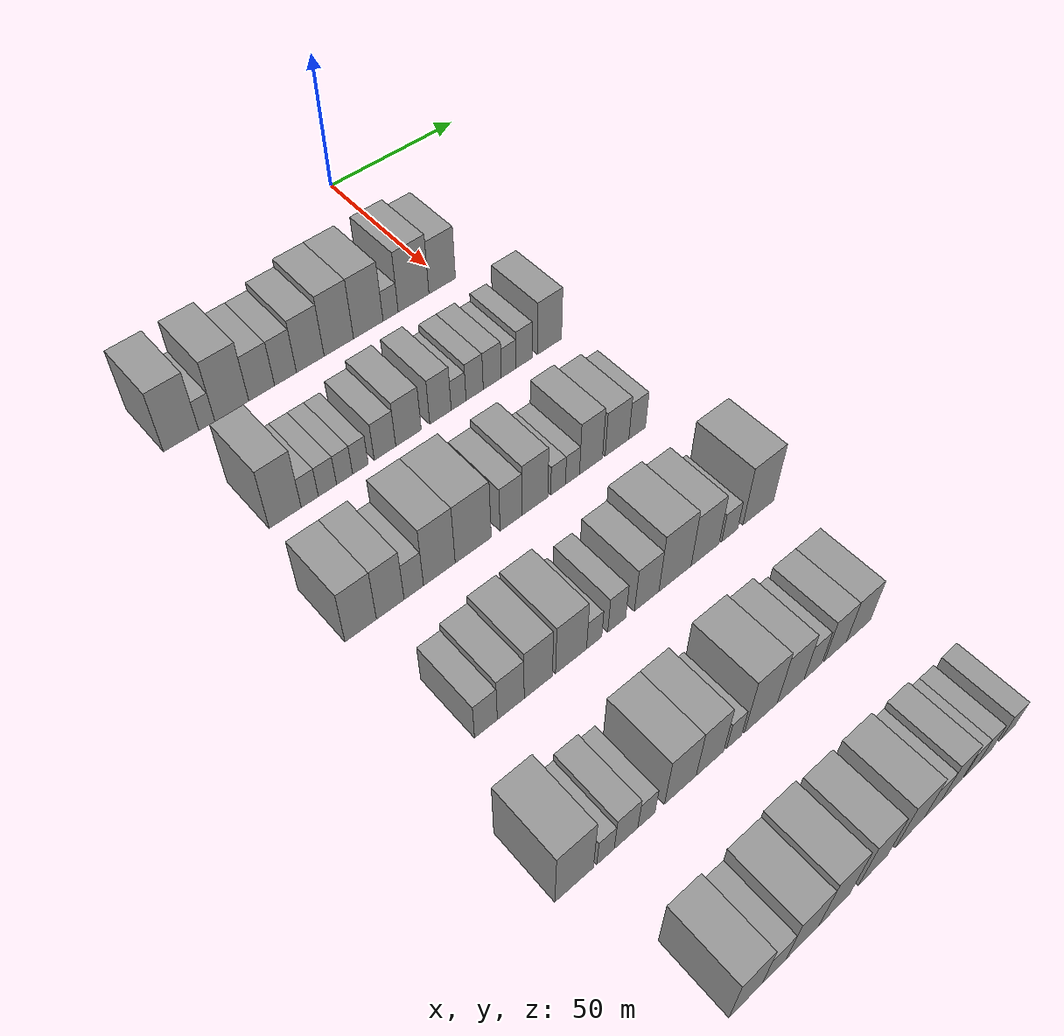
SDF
<sdf version="1.6">
 <world name="default">
  <model name="building_61">
   <static>1</static>
   <pose>50.0000 -93.2110 0 0.000000 0.000000 0.000000</pose>
   <link name="link">
    <pose>0 0 12.00 0 0 0</pose>
    <collision name="collision"><geometry><box><size>20.0000 11.2173 24.0000</size></box></geometry></collision>
    <visual name="visual">
     <cast_shadows>0</cast_shadows>
     <geometry><box><size>20.0000 11.2173 24.0000</size></box></geometry>
     <material>
      <script>
       <uri>model://grey_wall/materials/scripts</uri>
       <uri>model://grey_wall/materials/textures</uri>
       <name>vrc/grey_wall</name>
      </script>
     </material>
    </visual>
   </link>
  </model>
  <model name="building_62">
   <static>1</static>
   <pose>50.0000 -85.0519 0 0.000000 0.000000 0.000000</pose>
   <link name="link">
    <pose>0 0 6.00 0 0 0</pose>
    <collision name="collision"><geometry><box><size>20.0000 5.1009 12.0000</size></box></geometry></collision>
    <visual name="visual">
     <cast_shadows>0</cast_shadows>
     <geometry><box><size>20.0000 5.1009 12.0000</size></box></geometry>
     <material>
      <script>
       <uri>model://grey_wall/materials/scripts</uri>
       <uri>model://grey_wall/materials/textures</uri>
       <name>vrc/grey_wall</name>
      </script>
     </material>
    </visual>
   </link>
  </model>
  <model name="building_63">
   <static>1</static>
   <pose>50.0000 -76.9320 0 0.000000 0.000000 0.000000</pose>
   <link name="link">
    <pose>0 0 12.00 0 0 0</pose>
    <collision name="collision"><geometry><box><size>20.0000 11.1389 24.0000</size></box></geometry></collision>
    <visual name="visual">
     <cast_shadows>0</cast_shadows>
     <geometry><box><size>20.0000 11.1389 24.0000</size></box></geometry>
     <material>
      <script>
       <uri>model://grey_wall/materials/scripts</uri>
       <uri>model://grey_wall/materials/textures</uri>
       <name>vrc/grey_wall</name>
      </script>
     </material>
    </visual>
   </link>
  </model>
  <model name="building_64">
   <static>1</static>
   <pose>50.0000 -67.0298 0 0.000000 0.000000 0.000000</pose>
   <link name="link">
    <pose>0 0 9.00 0 0 0</pose>
    <collision name="collision"><geometry><box><size>20.0000 8.6655 18.0000</size></box></geometry></collision>
    <visual name="visual">
     <cast_shadows>0</cast_shadows>
     <geometry><box><size>20.0000 8.6655 18.0000</size></box></geometry>
     <material>
      <script>
       <uri>model://grey_wall/materials/scripts</uri>
       <uri>model://grey_wall/materials/textures</uri>
       <name>vrc/grey_wall</name>
      </script>
     </material>
    </visual>
   </link>
  </model>
  <model name="building_65">
   <static>1</static>
   <pose>50.0000 -58.9646 0 0.000000 0.000000 0.000000</pose>
   <link name="link">
    <pose>0 0 9.00 0 0 0</pose>
    <collision name="collision"><geometry><box><size>20.0000 7.4649 18.0000</size></box></geometry></collision>
    <visual name="visual">
     <cast_shadows>0</cast_shadows>
     <geometry><box><size>20.0000 7.4649 18.0000</size></box></geometry>
     <material>
      <script>
       <uri>model://grey_wall/materials/scripts</uri>
       <uri>model://grey_wall/materials/textures</uri>
       <name>vrc/grey_wall</name>
      </script>
     </material>
    </visual>
   </link>
  </model>
  <model name="building_66">
   <static>1</static>
   <pose>50.0000 -50.4153 0 0.000000 0.000000 0.000000</pose>
   <link name="link">
    <pose>0 0 10.50 0 0 0</pose>
    <collision name="collision"><geometry><box><size>20.0000 9.6337 21.0000</size></box></geometry></collision>
    <visual name="visual">
     <cast_shadows>0</cast_shadows>
     <geometry><box><size>20.0000 9.6337 21.0000</size></box></geometry>
     <material>
      <script>
       <uri>model://grey_wall/materials/scripts</uri>
       <uri>model://grey_wall/materials/textures</uri>
       <name>vrc/grey_wall</name>
      </script>
     </material>
    </visual>
   </link>
  </model>
  <model name="building_67">
   <static>1</static>
   <pose>50.0000 -40.3622 0 0.000000 0.000000 0.000000</pose>
   <link name="link">
    <pose>0 0 12.00 0 0 0</pose>
    <collision name="collision"><geometry><box><size>20.0000 10.4725 24.0000</size></box></geometry></collision>
    <visual name="visual">
     <cast_shadows>0</cast_shadows>
     <geometry><box><size>20.0000 10.4725 24.0000</size></box></geometry>
     <material>
      <script>
       <uri>model://grey_wall/materials/scripts</uri>
       <uri>model://grey_wall/materials/textures</uri>
       <name>vrc/grey_wall</name>
      </script>
     </material>
    </visual>
   </link>
  </model>
  <model name="building_68">
   <static>1</static>
   <pose>50.0000 -29.7375 0 0.000000 0.000000 0.000000</pose>
   <link name="link">
    <pose>0 0 12.00 0 0 0</pose>
    <collision name="collision"><geometry><box><size>20.0000 10.7768 24.0000</size></box></geometry></collision>
    <visual name="visual">
     <cast_shadows>0</cast_shadows>
     <geometry><box><size>20.0000 10.7768 24.0000</size></box></geometry>
     <material>
      <script>
       <uri>model://grey_wall/materials/scripts</uri>
       <uri>model://grey_wall/materials/textures</uri>
       <name>vrc/grey_wall</name>
      </script>
     </material>
    </visual>
   </link>
  </model>
  <model name="building_69">
   <static>1</static>
   <pose>50.0000 -21.5376 0 0.000000 0.000000 0.000000</pose>
   <link name="link">
    <pose>0 0 6.00 0 0 0</pose>
    <collision name="collision"><geometry><box><size>20.0000 5.6230 12.0000</size></box></geometry></collision>
    <visual name="visual">
     <cast_shadows>0</cast_shadows>
     <geometry><box><size>20.0000 5.6230 12.0000</size></box></geometry>
     <material>
      <script>
       <uri>model://grey_wall/materials/scripts</uri>
       <uri>model://grey_wall/materials/textures</uri>
       <name>vrc/grey_wall</name>
      </script>
     </material>
    </visual>
   </link>
  </model>
  <model name="building_70">
   <static>1</static>
   <pose>50.0000 -12.9066 0 0.000000 0.000000 0.000000</pose>
   <link name="link">
    <pose>0 0 12.00 0 0 0</pose>
    <collision name="collision"><geometry><box><size>20.0000 11.6391 24.0000</size></box></geometry></collision>
    <visual name="visual">
     <cast_shadows>0</cast_shadows>
     <geometry><box><size>20.0000 11.6391 24.0000</size></box></geometry>
     <material>
      <script>
       <uri>model://grey_wall/materials/scripts</uri>
       <uri>model://grey_wall/materials/textures</uri>
       <name>vrc/grey_wall</name>
      </script>
     </material>
    </visual>
   </link>
  </model>
  <model name="building_71">
   <static>1</static>
   <pose>50.0000 -1.9592 0 0.000000 0.000000 0.000000</pose>
   <link name="link">
    <pose>0 0 10.50 0 0 0</pose>
    <collision name="collision"><geometry><box><size>20.0000 10.2557 21.0000</size></box></geometry></collision>
    <visual name="visual">
     <cast_shadows>0</cast_shadows>
     <geometry><box><size>20.0000 10.2557 21.0000</size></box></geometry>
     <material>
      <script>
       <uri>model://grey_wall/materials/scripts</uri>
       <uri>model://grey_wall/materials/textures</uri>
       <name>vrc/grey_wall</name>
      </script>
     </material>
    </visual>
   </link>
  </model>
  <model name="building_195">
   <static>1</static>
   <pose>90.0000 -86.3754 0 0.000000 0.000000 0.000000</pose>
   <link name="link">
    <pose>0 0 12.00 0 0 0</pose>
    <collision name="collision"><geometry><box><size>20.0000 10.0518 24.0000</size></box></geometry></collision>
    <visual name="visual">
     <cast_shadows>0</cast_shadows>
     <geometry><box><size>20.0000 10.0518 24.0000</size></box></geometry>
     <material>
      <script>
       <uri>model://grey_wall/materials/scripts</uri>
       <uri>model://grey_wall/materials/textures</uri>
       <name>vrc/grey_wall</name>
      </script>
     </material>
    </visual>
   </link>
  </model>
  <model name="building_196">
   <static>1</static>
   <pose>90.0000 -78.6132 0 0.000000 0.000000 0.000000</pose>
   <link name="link">
    <pose>0 0 6.00 0 0 0</pose>
    <collision name="collision"><geometry><box><size>20.0000 5.4726 12.0000</size></box></geometry></collision>
    <visual name="visual">
     <cast_shadows>0</cast_shadows>
     <geometry><box><size>20.0000 5.4726 12.0000</size></box></geometry>
     <material>
      <script>
       <uri>model://grey_wall/materials/scripts</uri>
       <uri>model://grey_wall/materials/textures</uri>
       <name>vrc/grey_wall</name>
      </script>
     </material>
    </visual>
   </link>
  </model>
  <model name="building_197">
   <static>1</static>
   <pose>90.0000 -72.9280 0 0.000000 0.000000 0.000000</pose>
   <link name="link">
    <pose>0 0 6.00 0 0 0</pose>
    <collision name="collision"><geometry><box><size>20.0000 5.8979 12.0000</size></box></geometry></collision>
    <visual name="visual">
     <cast_shadows>0</cast_shadows>
     <geometry><box><size>20.0000 5.8979 12.0000</size></box></geometry>
     <material>
      <script>
       <uri>model://grey_wall/materials/scripts</uri>
       <uri>model://grey_wall/materials/textures</uri>
       <name>vrc/grey_wall</name>
      </script>
     </material>
    </visual>
   </link>
  </model>
  <model name="building_198">
   <static>1</static>
   <pose>90.0000 -67.3420 0 0.000000 0.000000 0.000000</pose>
   <link name="link">
    <pose>0 0 6.00 0 0 0</pose>
    <collision name="collision"><geometry><box><size>20.0000 5.2740 12.0000</size></box></geometry></collision>
    <visual name="visual">
     <cast_shadows>0</cast_shadows>
     <geometry><box><size>20.0000 5.2740 12.0000</size></box></geometry>
     <material>
      <script>
       <uri>model://grey_wall/materials/scripts</uri>
       <uri>model://grey_wall/materials/textures</uri>
       <name>vrc/grey_wall</name>
      </script>
     </material>
    </visual>
   </link>
  </model>
  <model name="building_199">
   <static>1</static>
   <pose>90.0000 -62.1107 0 0.000000 0.000000 0.000000</pose>
   <link name="link">
    <pose>0 0 6.00 0 0 0</pose>
    <collision name="collision"><geometry><box><size>20.0000 5.1886 12.0000</size></box></geometry></collision>
    <visual name="visual">
     <cast_shadows>0</cast_shadows>
     <geometry><box><size>20.0000 5.1886 12.0000</size></box></geometry>
     <material>
      <script>
       <uri>model://grey_wall/materials/scripts</uri>
       <uri>model://grey_wall/materials/textures</uri>
       <name>vrc/grey_wall</name>
      </script>
     </material>
    </visual>
   </link>
  </model>
  <model name="building_200">
   <static>1</static>
   <pose>90.0000 -53.8753 0 0.000000 0.000000 0.000000</pose>
   <link name="link">
    <pose>0 0 7.50 0 0 0</pose>
    <collision name="collision"><geometry><box><size>20.0000 7.2821 15.0000</size></box></geometry></collision>
    <visual name="visual">
     <cast_shadows>0</cast_shadows>
     <geometry><box><size>20.0000 7.2821 15.0000</size></box></geometry>
     <material>
      <script>
       <uri>model://grey_wall/materials/scripts</uri>
       <uri>model://grey_wall/materials/textures</uri>
       <name>vrc/grey_wall</name>
      </script>
     </material>
    </visual>
   </link>
  </model>
  <model name="building_201">
   <static>1</static>
   <pose>90.0000 -45.8330 0 0.000000 0.000000 0.000000</pose>
   <link name="link">
    <pose>0 0 9.00 0 0 0</pose>
    <collision name="collision"><geometry><box><size>20.0000 8.8026 18.0000</size></box></geometry></collision>
    <visual name="visual">
     <cast_shadows>0</cast_shadows>
     <geometry><box><size>20.0000 8.8026 18.0000</size></box></geometry>
     <material>
      <script>
       <uri>model://grey_wall/materials/scripts</uri>
       <uri>model://grey_wall/materials/textures</uri>
       <name>vrc/grey_wall</name>
      </script>
     </material>
    </visual>
   </link>
  </model>
  <model name="building_202">
   <static>1</static>
   <pose>90.0000 -34.6367 0 0.000000 0.000000 0.000000</pose>
   <link name="link">
    <pose>0 0 9.00 0 0 0</pose>
    <collision name="collision"><geometry><box><size>20.0000 7.5900 18.0000</size></box></geometry></collision>
    <visual name="visual">
     <cast_shadows>0</cast_shadows>
     <geometry><box><size>20.0000 7.5900 18.0000</size></box></geometry>
     <material>
      <script>
       <uri>model://grey_wall/materials/scripts</uri>
       <uri>model://grey_wall/materials/textures</uri>
       <name>vrc/grey_wall</name>
      </script>
     </material>
    </visual>
   </link>
  </model>
  <model name="building_203">
   <static>1</static>
   <pose>90.0000 -28.1659 0 0.000000 0.000000 0.000000</pose>
   <link name="link">
    <pose>0 0 6.00 0 0 0</pose>
    <collision name="collision"><geometry><box><size>20.0000 5.3516 12.0000</size></box></geometry></collision>
    <visual name="visual">
     <cast_shadows>0</cast_shadows>
     <geometry><box><size>20.0000 5.3516 12.0000</size></box></geometry>
     <material>
      <script>
       <uri>model://grey_wall/materials/scripts</uri>
       <uri>model://grey_wall/materials/textures</uri>
       <name>vrc/grey_wall</name>
      </script>
     </material>
    </visual>
   </link>
  </model>
  <model name="building_204">
   <static>1</static>
   <pose>90.0000 -22.3485 0 0.000000 0.000000 0.000000</pose>
   <link name="link">
    <pose>0 0 7.50 0 0 0</pose>
    <collision name="collision"><geometry><box><size>20.0000 6.2832 15.0000</size></box></geometry></collision>
    <visual name="visual">
     <cast_shadows>0</cast_shadows>
     <geometry><box><size>20.0000 6.2832 15.0000</size></box></geometry>
     <material>
      <script>
       <uri>model://grey_wall/materials/scripts</uri>
       <uri>model://grey_wall/materials/textures</uri>
       <name>vrc/grey_wall</name>
      </script>
     </material>
    </visual>
   </link>
  </model>
  <model name="building_205">
   <static>1</static>
   <pose>90.0000 -15.8681 0 0.000000 0.000000 0.000000</pose>
   <link name="link">
    <pose>0 0 7.50 0 0 0</pose>
    <collision name="collision"><geometry><box><size>20.0000 6.6775 15.0000</size></box></geometry></collision>
    <visual name="visual">
     <cast_shadows>0</cast_shadows>
     <geometry><box><size>20.0000 6.6775 15.0000</size></box></geometry>
     <material>
      <script>
       <uri>model://grey_wall/materials/scripts</uri>
       <uri>model://grey_wall/materials/textures</uri>
       <name>vrc/grey_wall</name>
      </script>
     </material>
    </visual>
   </link>
  </model>
  <model name="building_206">
   <static>1</static>
   <pose>90.0000 -9.7607 0 0.000000 0.000000 0.000000</pose>
   <link name="link">
    <pose>0 0 6.00 0 0 0</pose>
    <collision name="collision"><geometry><box><size>20.0000 5.5373 12.0000</size></box></geometry></collision>
    <visual name="visual">
     <cast_shadows>0</cast_shadows>
     <geometry><box><size>20.0000 5.5373 12.0000</size></box></geometry>
     <material>
      <script>
       <uri>model://grey_wall/materials/scripts</uri>
       <uri>model://grey_wall/materials/textures</uri>
       <name>vrc/grey_wall</name>
      </script>
     </material>
    </visual>
   </link>
  </model>
  <model name="building_207">
   <static>1</static>
   <pose>90.0000 -3.9104 0 0.000000 0.000000 0.000000</pose>
   <link name="link">
    <pose>0 0 7.50 0 0 0</pose>
    <collision name="collision"><geometry><box><size>20.0000 6.1633 15.0000</size></box></geometry></collision>
    <visual name="visual">
     <cast_shadows>0</cast_shadows>
     <geometry><box><size>20.0000 6.1633 15.0000</size></box></geometry>
     <material>
      <script>
       <uri>model://grey_wall/materials/scripts</uri>
       <uri>model://grey_wall/materials/textures</uri>
       <name>vrc/grey_wall</name>
      </script>
     </material>
    </visual>
   </link>
  </model>
  <model name="building_208">
   <static>1</static>
   <pose>90.0000 5.8386 0 0.000000 0.000000 0.000000</pose>
   <link name="link">
    <pose>0 0 10.50 0 0 0</pose>
    <collision name="collision"><geometry><box><size>20.0000 9.3346 21.0000</size></box></geometry></collision>
    <visual name="visual">
     <cast_shadows>0</cast_shadows>
     <geometry><box><size>20.0000 9.3346 21.0000</size></box></geometry>
     <material>
      <script>
       <uri>model://grey_wall/materials/scripts</uri>
       <uri>model://grey_wall/materials/textures</uri>
       <name>vrc/grey_wall</name>
      </script>
     </material>
    </visual>
   </link>
  </model>
  <model name="building_332">
   <static>1</static>
   <pose>130.0000 -91.5479 0 0.000000 0.000000 0.000000</pose>
   <link name="link">
    <pose>0 0 10.50 0 0 0</pose>
    <collision name="collision"><geometry><box><size>20.0000 9.5482 21.0000</size></box></geometry></collision>
    <visual name="visual">
     <cast_shadows>0</cast_shadows>
     <geometry><box><size>20.0000 9.5482 21.0000</size></box></geometry>
     <material>
      <script>
       <uri>model://grey_wall/materials/scripts</uri>
       <uri>model://grey_wall/materials/textures</uri>
       <name>vrc/grey_wall</name>
      </script>
     </material>
    </visual>
   </link>
  </model>
  <model name="building_333">
   <static>1</static>
   <pose>130.0000 -82.4915 0 0.000000 0.000000 0.000000</pose>
   <link name="link">
    <pose>0 0 10.50 0 0 0</pose>
    <collision name="collision"><geometry><box><size>20.0000 8.5646 21.0000</size></box></geometry></collision>
    <visual name="visual">
     <cast_shadows>0</cast_shadows>
     <geometry><box><size>20.0000 8.5646 21.0000</size></box></geometry>
     <material>
      <script>
       <uri>model://grey_wall/materials/scripts</uri>
       <uri>model://grey_wall/materials/textures</uri>
       <name>vrc/grey_wall</name>
      </script>
     </material>
    </visual>
   </link>
  </model>
  <model name="building_334">
   <static>1</static>
   <pose>130.0000 -75.1531 0 0.000000 0.000000 0.000000</pose>
   <link name="link">
    <pose>0 0 7.50 0 0 0</pose>
    <collision name="collision"><geometry><box><size>20.0000 6.1120 15.0000</size></box></geometry></collision>
    <visual name="visual">
     <cast_shadows>0</cast_shadows>
     <geometry><box><size>20.0000 6.1120 15.0000</size></box></geometry>
     <material>
      <script>
       <uri>model://grey_wall/materials/scripts</uri>
       <uri>model://grey_wall/materials/textures</uri>
       <name>vrc/grey_wall</name>
      </script>
     </material>
    </visual>
   </link>
  </model>
  <model name="building_335">
   <static>1</static>
   <pose>130.0000 -66.9962 0 0.000000 0.000000 0.000000</pose>
   <link name="link">
    <pose>0 0 12.00 0 0 0</pose>
    <collision name="collision"><geometry><box><size>20.0000 10.2019 24.0000</size></box></geometry></collision>
    <visual name="visual">
     <cast_shadows>0</cast_shadows>
     <geometry><box><size>20.0000 10.2019 24.0000</size></box></geometry>
     <material>
      <script>
       <uri>model://grey_wall/materials/scripts</uri>
       <uri>model://grey_wall/materials/textures</uri>
       <name>vrc/grey_wall</name>
      </script>
     </material>
    </visual>
   </link>
  </model>
  <model name="building_336">
   <static>1</static>
   <pose>130.0000 -55.9315 0 0.000000 0.000000 0.000000</pose>
   <link name="link">
    <pose>0 0 12.00 0 0 0</pose>
    <collision name="collision"><geometry><box><size>20.0000 11.9274 24.0000</size></box></geometry></collision>
    <visual name="visual">
     <cast_shadows>0</cast_shadows>
     <geometry><box><size>20.0000 11.9274 24.0000</size></box></geometry>
     <material>
      <script>
       <uri>model://grey_wall/materials/scripts</uri>
       <uri>model://grey_wall/materials/textures</uri>
       <name>vrc/grey_wall</name>
      </script>
     </material>
    </visual>
   </link>
  </model>
  <model name="building_337">
   <static>1</static>
   <pose>130.0000 -43.2284 0 0.000000 0.000000 0.000000</pose>
   <link name="link">
    <pose>0 0 9.00 0 0 0</pose>
    <collision name="collision"><geometry><box><size>20.0000 7.4788 18.0000</size></box></geometry></collision>
    <visual name="visual">
     <cast_shadows>0</cast_shadows>
     <geometry><box><size>20.0000 7.4788 18.0000</size></box></geometry>
     <material>
      <script>
       <uri>model://grey_wall/materials/scripts</uri>
       <uri>model://grey_wall/materials/textures</uri>
       <name>vrc/grey_wall</name>
      </script>
     </material>
    </visual>
   </link>
  </model>
  <model name="building_338">
   <static>1</static>
   <pose>130.0000 -34.9580 0 0.000000 0.000000 0.000000</pose>
   <link name="link">
    <pose>0 0 10.50 0 0 0</pose>
    <collision name="collision"><geometry><box><size>20.0000 9.0620 21.0000</size></box></geometry></collision>
    <visual name="visual">
     <cast_shadows>0</cast_shadows>
     <geometry><box><size>20.0000 9.0620 21.0000</size></box></geometry>
     <material>
      <script>
       <uri>model://grey_wall/materials/scripts</uri>
       <uri>model://grey_wall/materials/textures</uri>
       <name>vrc/grey_wall</name>
      </script>
     </material>
    </visual>
   </link>
  </model>
  <model name="building_339">
   <static>1</static>
   <pose>130.0000 -26.8038 0 0.000000 0.000000 0.000000</pose>
   <link name="link">
    <pose>0 0 6.00 0 0 0</pose>
    <collision name="collision"><geometry><box><size>20.0000 5.2464 12.0000</size></box></geometry></collision>
    <visual name="visual">
     <cast_shadows>0</cast_shadows>
     <geometry><box><size>20.0000 5.2464 12.0000</size></box></geometry>
     <material>
      <script>
       <uri>model://grey_wall/materials/scripts</uri>
       <uri>model://grey_wall/materials/textures</uri>
       <name>vrc/grey_wall</name>
      </script>
     </material>
    </visual>
   </link>
  </model>
  <model name="building_340">
   <static>1</static>
   <pose>130.0000 -21.6548 0 0.000000 0.000000 0.000000</pose>
   <link name="link">
    <pose>0 0 6.00 0 0 0</pose>
    <collision name="collision"><geometry><box><size>20.0000 5.0516 12.0000</size></box></geometry></collision>
    <visual name="visual">
     <cast_shadows>0</cast_shadows>
     <geometry><box><size>20.0000 5.0516 12.0000</size></box></geometry>
     <material>
      <script>
       <uri>model://grey_wall/materials/scripts</uri>
       <uri>model://grey_wall/materials/textures</uri>
       <name>vrc/grey_wall</name>
      </script>
     </material>
    </visual>
   </link>
  </model>
  <model name="building_341">
   <static>1</static>
   <pose>130.0000 -14.9220 0 0.000000 0.000000 0.000000</pose>
   <link name="link">
    <pose>0 0 10.50 0 0 0</pose>
    <collision name="collision"><geometry><box><size>20.0000 8.4139 21.0000</size></box></geometry></collision>
    <visual name="visual">
     <cast_shadows>0</cast_shadows>
     <geometry><box><size>20.0000 8.4139 21.0000</size></box></geometry>
     <material>
      <script>
       <uri>model://grey_wall/materials/scripts</uri>
       <uri>model://grey_wall/materials/textures</uri>
       <name>vrc/grey_wall</name>
      </script>
     </material>
    </visual>
   </link>
  </model>
  <model name="building_342">
   <static>1</static>
   <pose>130.0000 -5.2598 0 0.000000 0.000000 0.000000</pose>
   <link name="link">
    <pose>0 0 9.00 0 0 0</pose>
    <collision name="collision"><geometry><box><size>20.0000 8.9105 18.0000</size></box></geometry></collision>
    <visual name="visual">
     <cast_shadows>0</cast_shadows>
     <geometry><box><size>20.0000 8.9105 18.0000</size></box></geometry>
     <material>
      <script>
       <uri>model://grey_wall/materials/scripts</uri>
       <uri>model://grey_wall/materials/textures</uri>
       <name>vrc/grey_wall</name>
      </script>
     </material>
    </visual>
   </link>
  </model>
  <model name="building_343">
   <static>1</static>
   <pose>130.0000 2.3541 0 0.000000 0.000000 0.000000</pose>
   <link name="link">
    <pose>0 0 7.50 0 0 0</pose>
    <collision name="collision"><geometry><box><size>20.0000 6.3174 15.0000</size></box></geometry></collision>
    <visual name="visual">
     <cast_shadows>0</cast_shadows>
     <geometry><box><size>20.0000 6.3174 15.0000</size></box></geometry>
     <material>
      <script>
       <uri>model://grey_wall/materials/scripts</uri>
       <uri>model://grey_wall/materials/textures</uri>
       <name>vrc/grey_wall</name>
      </script>
     </material>
    </visual>
   </link>
  </model>
  <model name="building_478">
   <static>1</static>
   <pose>170.0000 -85.2465 0 0.000000 0.000000 0.000000</pose>
   <link name="link">
    <pose>0 0 7.50 0 0 0</pose>
    <collision name="collision"><geometry><box><size>20.0000 6.8730 15.0000</size></box></geometry></collision>
    <visual name="visual">
     <cast_shadows>0</cast_shadows>
     <geometry><box><size>20.0000 6.8730 15.0000</size></box></geometry>
     <material>
      <script>
       <uri>model://grey_wall/materials/scripts</uri>
       <uri>model://grey_wall/materials/textures</uri>
       <name>vrc/grey_wall</name>
      </script>
     </material>
    </visual>
   </link>
  </model>
  <model name="building_479">
   <static>1</static>
   <pose>170.0000 -77.6842 0 0.000000 0.000000 0.000000</pose>
   <link name="link">
    <pose>0 0 9.00 0 0 0</pose>
    <collision name="collision"><geometry><box><size>20.0000 8.2517 18.0000</size></box></geometry></collision>
    <visual name="visual">
     <cast_shadows>0</cast_shadows>
     <geometry><box><size>20.0000 8.2517 18.0000</size></box></geometry>
     <material>
      <script>
       <uri>model://grey_wall/materials/scripts</uri>
       <uri>model://grey_wall/materials/textures</uri>
       <name>vrc/grey_wall</name>
      </script>
     </material>
    </visual>
   </link>
  </model>
  <model name="building_480">
   <static>1</static>
   <pose>170.0000 -69.1161 0 0.000000 0.000000 0.000000</pose>
   <link name="link">
    <pose>0 0 10.50 0 0 0</pose>
    <collision name="collision"><geometry><box><size>20.0000 8.8844 21.0000</size></box></geometry></collision>
    <visual name="visual">
     <cast_shadows>0</cast_shadows>
     <geometry><box><size>20.0000 8.8844 21.0000</size></box></geometry>
     <material>
      <script>
       <uri>model://grey_wall/materials/scripts</uri>
       <uri>model://grey_wall/materials/textures</uri>
       <name>vrc/grey_wall</name>
      </script>
     </material>
    </visual>
   </link>
  </model>
  <model name="building_481">
   <static>1</static>
   <pose>170.0000 -58.6413 0 0.000000 0.000000 0.000000</pose>
   <link name="link">
    <pose>0 0 10.50 0 0 0</pose>
    <collision name="collision"><geometry><box><size>20.0000 10.0652 21.0000</size></box></geometry></collision>
    <visual name="visual">
     <cast_shadows>0</cast_shadows>
     <geometry><box><size>20.0000 10.0652 21.0000</size></box></geometry>
     <material>
      <script>
       <uri>model://grey_wall/materials/scripts</uri>
       <uri>model://grey_wall/materials/textures</uri>
       <name>vrc/grey_wall</name>
      </script>
     </material>
    </visual>
   </link>
  </model>
  <model name="building_482">
   <static>1</static>
   <pose>170.0000 -51.0923 0 0.000000 0.000000 0.000000</pose>
   <link name="link">
    <pose>0 0 6.00 0 0 0</pose>
    <collision name="collision"><geometry><box><size>20.0000 5.0329 12.0000</size></box></geometry></collision>
    <visual name="visual">
     <cast_shadows>0</cast_shadows>
     <geometry><box><size>20.0000 5.0329 12.0000</size></box></geometry>
     <material>
      <script>
       <uri>model://grey_wall/materials/scripts</uri>
       <uri>model://grey_wall/materials/textures</uri>
       <name>vrc/grey_wall</name>
      </script>
     </material>
    </visual>
   </link>
  </model>
  <model name="building_483">
   <static>1</static>
   <pose>170.0000 -43.5519 0 0.000000 0.000000 0.000000</pose>
   <link name="link">
    <pose>0 0 7.50 0 0 0</pose>
    <collision name="collision"><geometry><box><size>20.0000 6.0478 15.0000</size></box></geometry></collision>
    <visual name="visual">
     <cast_shadows>0</cast_shadows>
     <geometry><box><size>20.0000 6.0478 15.0000</size></box></geometry>
     <material>
      <script>
       <uri>model://grey_wall/materials/scripts</uri>
       <uri>model://grey_wall/materials/textures</uri>
       <name>vrc/grey_wall</name>
      </script>
     </material>
    </visual>
   </link>
  </model>
  <model name="building_484">
   <static>1</static>
   <pose>170.0000 -33.2871 0 0.000000 0.000000 0.000000</pose>
   <link name="link">
    <pose>0 0 9.00 0 0 0</pose>
    <collision name="collision"><geometry><box><size>20.0000 8.4818 18.0000</size></box></geometry></collision>
    <visual name="visual">
     <cast_shadows>0</cast_shadows>
     <geometry><box><size>20.0000 8.4818 18.0000</size></box></geometry>
     <material>
      <script>
       <uri>model://grey_wall/materials/scripts</uri>
       <uri>model://grey_wall/materials/textures</uri>
       <name>vrc/grey_wall</name>
      </script>
     </material>
    </visual>
   </link>
  </model>
  <model name="building_485">
   <static>1</static>
   <pose>170.0000 -23.3056 0 0.000000 0.000000 0.000000</pose>
   <link name="link">
    <pose>0 0 12.00 0 0 0</pose>
    <collision name="collision"><geometry><box><size>20.0000 11.4812 24.0000</size></box></geometry></collision>
    <visual name="visual">
     <cast_shadows>0</cast_shadows>
     <geometry><box><size>20.0000 11.4812 24.0000</size></box></geometry>
     <material>
      <script>
       <uri>model://grey_wall/materials/scripts</uri>
       <uri>model://grey_wall/materials/textures</uri>
       <name>vrc/grey_wall</name>
      </script>
     </material>
    </visual>
   </link>
  </model>
  <model name="building_486">
   <static>1</static>
   <pose>170.0000 -12.4539 0 0.000000 0.000000 0.000000</pose>
   <link name="link">
    <pose>0 0 10.50 0 0 0</pose>
    <collision name="collision"><geometry><box><size>20.0000 10.2221 21.0000</size></box></geometry></collision>
    <visual name="visual">
     <cast_shadows>0</cast_shadows>
     <geometry><box><size>20.0000 10.2221 21.0000</size></box></geometry>
     <material>
      <script>
       <uri>model://grey_wall/materials/scripts</uri>
       <uri>model://grey_wall/materials/textures</uri>
       <name>vrc/grey_wall</name>
      </script>
     </material>
    </visual>
   </link>
  </model>
  <model name="building_487">
   <static>1</static>
   <pose>170.0000 -3.3612 0 0.000000 0.000000 0.000000</pose>
   <link name="link">
    <pose>0 0 6.00 0 0 0</pose>
    <collision name="collision"><geometry><box><size>20.0000 5.9633 12.0000</size></box></geometry></collision>
    <visual name="visual">
     <cast_shadows>0</cast_shadows>
     <geometry><box><size>20.0000 5.9633 12.0000</size></box></geometry>
     <material>
      <script>
       <uri>model://grey_wall/materials/scripts</uri>
       <uri>model://grey_wall/materials/textures</uri>
       <name>vrc/grey_wall</name>
      </script>
     </material>
    </visual>
   </link>
  </model>
  <model name="building_488">
   <static>1</static>
   <pose>170.0000 7.5301 0 0.000000 0.000000 0.000000</pose>
   <link name="link">
    <pose>0 0 12.00 0 0 0</pose>
    <collision name="collision"><geometry><box><size>20.0000 11.8194 24.0000</size></box></geometry></collision>
    <visual name="visual">
     <cast_shadows>0</cast_shadows>
     <geometry><box><size>20.0000 11.8194 24.0000</size></box></geometry>
     <material>
      <script>
       <uri>model://grey_wall/materials/scripts</uri>
       <uri>model://grey_wall/materials/textures</uri>
       <name>vrc/grey_wall</name>
      </script>
     </material>
    </visual>
   </link>
  </model>
  <model name="building_619">
   <static>1</static>
   <pose>210.0000 -94.2285 0 0.000000 0.000000 0.000000</pose>
   <link name="link">
    <pose>0 0 12.00 0 0 0</pose>
    <collision name="collision"><geometry><box><size>20.0000 11.1250 24.0000</size></box></geometry></collision>
    <visual name="visual">
     <cast_shadows>0</cast_shadows>
     <geometry><box><size>20.0000 11.1250 24.0000</size></box></geometry>
     <material>
      <script>
       <uri>model://grey_wall/materials/scripts</uri>
       <uri>model://grey_wall/materials/textures</uri>
       <name>vrc/grey_wall</name>
      </script>
     </material>
    </visual>
   </link>
  </model>
  <model name="building_620">
   <static>1</static>
   <pose>210.0000 -85.0710 0 0.000000 0.000000 0.000000</pose>
   <link name="link">
    <pose>0 0 6.00 0 0 0</pose>
    <collision name="collision"><geometry><box><size>20.0000 5.1900 12.0000</size></box></geometry></collision>
    <visual name="visual">
     <cast_shadows>0</cast_shadows>
     <geometry><box><size>20.0000 5.1900 12.0000</size></box></geometry>
     <material>
      <script>
       <uri>model://grey_wall/materials/scripts</uri>
       <uri>model://grey_wall/materials/textures</uri>
       <name>vrc/grey_wall</name>
      </script>
     </material>
    </visual>
   </link>
  </model>
  <model name="building_621">
   <static>1</static>
   <pose>210.0000 -78.9095 0 0.000000 0.000000 0.000000</pose>
   <link name="link">
    <pose>0 0 7.50 0 0 0</pose>
    <collision name="collision"><geometry><box><size>20.0000 7.1330 15.0000</size></box></geometry></collision>
    <visual name="visual">
     <cast_shadows>0</cast_shadows>
     <geometry><box><size>20.0000 7.1330 15.0000</size></box></geometry>
     <material>
      <script>
       <uri>model://grey_wall/materials/scripts</uri>
       <uri>model://grey_wall/materials/textures</uri>
       <name>vrc/grey_wall</name>
      </script>
     </material>
    </visual>
   </link>
  </model>
  <model name="building_622">
   <static>1</static>
   <pose>210.0000 -72.7045 0 0.000000 0.000000 0.000000</pose>
   <link name="link">
    <pose>0 0 6.00 0 0 0</pose>
    <collision name="collision"><geometry><box><size>20.0000 5.2769 12.0000</size></box></geometry></collision>
    <visual name="visual">
     <cast_shadows>0</cast_shadows>
     <geometry><box><size>20.0000 5.2769 12.0000</size></box></geometry>
     <material>
      <script>
       <uri>model://grey_wall/materials/scripts</uri>
       <uri>model://grey_wall/materials/textures</uri>
       <name>vrc/grey_wall</name>
      </script>
     </material>
    </visual>
   </link>
  </model>
  <model name="building_623">
   <static>1</static>
   <pose>210.0000 -62.0403 0 0.000000 0.000000 0.000000</pose>
   <link name="link">
    <pose>0 0 10.50 0 0 0</pose>
    <collision name="collision"><geometry><box><size>20.0000 10.0515 21.0000</size></box></geometry></collision>
    <visual name="visual">
     <cast_shadows>0</cast_shadows>
     <geometry><box><size>20.0000 10.0515 21.0000</size></box></geometry>
     <material>
      <script>
       <uri>model://grey_wall/materials/scripts</uri>
       <uri>model://grey_wall/materials/textures</uri>
       <name>vrc/grey_wall</name>
      </script>
     </material>
    </visual>
   </link>
  </model>
  <model name="building_624">
   <static>1</static>
   <pose>210.0000 -52.5276 0 0.000000 0.000000 0.000000</pose>
   <link name="link">
    <pose>0 0 10.50 0 0 0</pose>
    <collision name="collision"><geometry><box><size>20.0000 8.9738 21.0000</size></box></geometry></collision>
    <visual name="visual">
     <cast_shadows>0</cast_shadows>
     <geometry><box><size>20.0000 8.9738 21.0000</size></box></geometry>
     <material>
      <script>
       <uri>model://grey_wall/materials/scripts</uri>
       <uri>model://grey_wall/materials/textures</uri>
       <name>vrc/grey_wall</name>
      </script>
     </material>
    </visual>
   </link>
  </model>
  <model name="building_625">
   <static>1</static>
   <pose>210.0000 -44.5511 0 0.000000 0.000000 0.000000</pose>
   <link name="link">
    <pose>0 0 6.00 0 0 0</pose>
    <collision name="collision"><geometry><box><size>20.0000 4.9792 12.0000</size></box></geometry></collision>
    <visual name="visual">
     <cast_shadows>0</cast_shadows>
     <geometry><box><size>20.0000 4.9792 12.0000</size></box></geometry>
     <material>
      <script>
       <uri>model://grey_wall/materials/scripts</uri>
       <uri>model://grey_wall/materials/textures</uri>
       <name>vrc/grey_wall</name>
      </script>
     </material>
    </visual>
   </link>
  </model>
  <model name="building_626">
   <static>1</static>
   <pose>210.0000 -35.4413 0 0.000000 0.000000 0.000000</pose>
   <link name="link">
    <pose>0 0 12.00 0 0 0</pose>
    <collision name="collision"><geometry><box><size>20.0000 11.2404 24.0000</size></box></geometry></collision>
    <visual name="visual">
     <cast_shadows>0</cast_shadows>
     <geometry><box><size>20.0000 11.2404 24.0000</size></box></geometry>
     <material>
      <script>
       <uri>model://grey_wall/materials/scripts</uri>
       <uri>model://grey_wall/materials/textures</uri>
       <name>vrc/grey_wall</name>
      </script>
     </material>
    </visual>
   </link>
  </model>
  <model name="building_627">
   <static>1</static>
   <pose>210.0000 -25.0858 0 0.000000 0.000000 0.000000</pose>
   <link name="link">
    <pose>0 0 10.50 0 0 0</pose>
    <collision name="collision"><geometry><box><size>20.0000 9.4706 21.0000</size></box></geometry></collision>
    <visual name="visual">
     <cast_shadows>0</cast_shadows>
     <geometry><box><size>20.0000 9.4706 21.0000</size></box></geometry>
     <material>
      <script>
       <uri>model://grey_wall/materials/scripts</uri>
       <uri>model://grey_wall/materials/textures</uri>
       <name>vrc/grey_wall</name>
      </script>
     </material>
    </visual>
   </link>
  </model>
  <model name="building_628">
   <static>1</static>
   <pose>210.0000 -17.1728 0 0.000000 0.000000 0.000000</pose>
   <link name="link">
    <pose>0 0 7.50 0 0 0</pose>
    <collision name="collision"><geometry><box><size>20.0000 6.3554 15.0000</size></box></geometry></collision>
    <visual name="visual">
     <cast_shadows>0</cast_shadows>
     <geometry><box><size>20.0000 6.3554 15.0000</size></box></geometry>
     <material>
      <script>
       <uri>model://grey_wall/materials/scripts</uri>
       <uri>model://grey_wall/materials/textures</uri>
       <name>vrc/grey_wall</name>
      </script>
     </material>
    </visual>
   </link>
  </model>
  <model name="building_629">
   <static>1</static>
   <pose>210.0000 -8.8990 0 0.000000 0.000000 0.000000</pose>
   <link name="link">
    <pose>0 0 9.00 0 0 0</pose>
    <collision name="collision"><geometry><box><size>20.0000 8.1922 18.0000</size></box></geometry></collision>
    <visual name="visual">
     <cast_shadows>0</cast_shadows>
     <geometry><box><size>20.0000 8.1922 18.0000</size></box></geometry>
     <material>
      <script>
       <uri>model://grey_wall/materials/scripts</uri>
       <uri>model://grey_wall/materials/textures</uri>
       <name>vrc/grey_wall</name>
      </script>
     </material>
    </visual>
   </link>
  </model>
  <model name="building_630">
   <static>1</static>
   <pose>210.0000 -0.3094 0 0.000000 0.000000 0.000000</pose>
   <link name="link">
    <pose>0 0 9.00 0 0 0</pose>
    <collision name="collision"><geometry><box><size>20.0000 8.9871 18.0000</size></box></geometry></collision>
    <visual name="visual">
     <cast_shadows>0</cast_shadows>
     <geometry><box><size>20.0000 8.9871 18.0000</size></box></geometry>
     <material>
      <script>
       <uri>model://grey_wall/materials/scripts</uri>
       <uri>model://grey_wall/materials/textures</uri>
       <name>vrc/grey_wall</name>
      </script>
     </material>
    </visual>
   </link>
  </model>
  <model name="building_764">
   <static>1</static>
   <pose>250.0000 -83.9613 0 0.000000 0.000000 0.000000</pose>
   <link name="link">
    <pose>0 0 10.50 0 0 0</pose>
    <collision name="collision"><geometry><box><size>20.0000 9.7907 21.0000</size></box></geometry></collision>
    <visual name="visual">
     <cast_shadows>0</cast_shadows>
     <geometry><box><size>20.0000 9.7907 21.0000</size></box></geometry>
     <material>
      <script>
       <uri>model://grey_wall/materials/scripts</uri>
       <uri>model://grey_wall/materials/textures</uri>
       <name>vrc/grey_wall</name>
      </script>
     </material>
    </visual>
   </link>
  </model>
  <model name="building_765">
   <static>1</static>
   <pose>250.0000 -75.4190 0 0.000000 0.000000 0.000000</pose>
   <link name="link">
    <pose>0 0 7.50 0 0 0</pose>
    <collision name="collision"><geometry><box><size>20.0000 7.2940 15.0000</size></box></geometry></collision>
    <visual name="visual">
     <cast_shadows>0</cast_shadows>
     <geometry><box><size>20.0000 7.2940 15.0000</size></box></geometry>
     <material>
      <script>
       <uri>model://grey_wall/materials/scripts</uri>
       <uri>model://grey_wall/materials/textures</uri>
       <name>vrc/grey_wall</name>
      </script>
     </material>
    </visual>
   </link>
  </model>
  <model name="building_766">
   <static>1</static>
   <pose>250.0000 -66.6908 0 0.000000 0.000000 0.000000</pose>
   <link name="link">
    <pose>0 0 10.50 0 0 0</pose>
    <collision name="collision"><geometry><box><size>20.0000 10.1623 21.0000</size></box></geometry></collision>
    <visual name="visual">
     <cast_shadows>0</cast_shadows>
     <geometry><box><size>20.0000 10.1623 21.0000</size></box></geometry>
     <material>
      <script>
       <uri>model://grey_wall/materials/scripts</uri>
       <uri>model://grey_wall/materials/textures</uri>
       <name>vrc/grey_wall</name>
      </script>
     </material>
    </visual>
   </link>
  </model>
  <model name="building_767">
   <static>1</static>
   <pose>250.0000 -56.6817 0 0.000000 0.000000 0.000000</pose>
   <link name="link">
    <pose>0 0 12.00 0 0 0</pose>
    <collision name="collision"><geometry><box><size>20.0000 9.8559 24.0000</size></box></geometry></collision>
    <visual name="visual">
     <cast_shadows>0</cast_shadows>
     <geometry><box><size>20.0000 9.8559 24.0000</size></box></geometry>
     <material>
      <script>
       <uri>model://grey_wall/materials/scripts</uri>
       <uri>model://grey_wall/materials/textures</uri>
       <name>vrc/grey_wall</name>
      </script>
     </material>
    </visual>
   </link>
  </model>
  <model name="building_768">
   <static>1</static>
   <pose>250.0000 -44.0010 0 0.000000 0.000000 0.000000</pose>
   <link name="link">
    <pose>0 0 10.50 0 0 0</pose>
    <collision name="collision"><geometry><box><size>20.0000 9.5054 21.0000</size></box></geometry></collision>
    <visual name="visual">
     <cast_shadows>0</cast_shadows>
     <geometry><box><size>20.0000 9.5054 21.0000</size></box></geometry>
     <material>
      <script>
       <uri>model://grey_wall/materials/scripts</uri>
       <uri>model://grey_wall/materials/textures</uri>
       <name>vrc/grey_wall</name>
      </script>
     </material>
    </visual>
   </link>
  </model>
  <model name="building_769">
   <static>1</static>
   <pose>250.0000 -31.3406 0 0.000000 0.000000 0.000000</pose>
   <link name="link">
    <pose>0 0 10.50 0 0 0</pose>
    <collision name="collision"><geometry><box><size>20.0000 9.8155 21.0000</size></box></geometry></collision>
    <visual name="visual">
     <cast_shadows>0</cast_shadows>
     <geometry><box><size>20.0000 9.8155 21.0000</size></box></geometry>
     <material>
      <script>
       <uri>model://grey_wall/materials/scripts</uri>
       <uri>model://grey_wall/materials/textures</uri>
       <name>vrc/grey_wall</name>
      </script>
     </material>
    </visual>
   </link>
  </model>
  <model name="building_770">
   <static>1</static>
   <pose>250.0000 -23.3260 0 0.000000 0.000000 0.000000</pose>
   <link name="link">
    <pose>0 0 7.50 0 0 0</pose>
    <collision name="collision"><geometry><box><size>20.0000 6.2136 15.0000</size></box></geometry></collision>
    <visual name="visual">
     <cast_shadows>0</cast_shadows>
     <geometry><box><size>20.0000 6.2136 15.0000</size></box></geometry>
     <material>
      <script>
       <uri>model://grey_wall/materials/scripts</uri>
       <uri>model://grey_wall/materials/textures</uri>
       <name>vrc/grey_wall</name>
      </script>
     </material>
    </visual>
   </link>
  </model>
  <model name="building_771">
   <static>1</static>
   <pose>250.0000 -16.5335 0 0.000000 0.000000 0.000000</pose>
   <link name="link">
    <pose>0 0 9.00 0 0 0</pose>
    <collision name="collision"><geometry><box><size>20.0000 7.3715 18.0000</size></box></geometry></collision>
    <visual name="visual">
     <cast_shadows>0</cast_shadows>
     <geometry><box><size>20.0000 7.3715 18.0000</size></box></geometry>
     <material>
      <script>
       <uri>model://grey_wall/materials/scripts</uri>
       <uri>model://grey_wall/materials/textures</uri>
       <name>vrc/grey_wall</name>
      </script>
     </material>
    </visual>
   </link>
  </model>
  <model name="building_772">
   <static>1</static>
   <pose>250.0000 -9.2369 0 0.000000 0.000000 0.000000</pose>
   <link name="link">
    <pose>0 0 6.00 0 0 0</pose>
    <collision name="collision"><geometry><box><size>20.0000 5.2216 12.0000</size></box></geometry></collision>
    <visual name="visual">
     <cast_shadows>0</cast_shadows>
     <geometry><box><size>20.0000 5.2216 12.0000</size></box></geometry>
     <material>
      <script>
       <uri>model://grey_wall/materials/scripts</uri>
       <uri>model://grey_wall/materials/textures</uri>
       <name>vrc/grey_wall</name>
      </script>
     </material>
    </visual>
   </link>
  </model>
  <model name="building_773">
   <static>1</static>
   <pose>250.0000 -4.0519 0 0.000000 0.000000 0.000000</pose>
   <link name="link">
    <pose>0 0 6.00 0 0 0</pose>
    <collision name="collision"><geometry><box><size>20.0000 5.1484 12.0000</size></box></geometry></collision>
    <visual name="visual">
     <cast_shadows>0</cast_shadows>
     <geometry><box><size>20.0000 5.1484 12.0000</size></box></geometry>
     <material>
      <script>
       <uri>model://grey_wall/materials/scripts</uri>
       <uri>model://grey_wall/materials/textures</uri>
       <name>vrc/grey_wall</name>
      </script>
     </material>
    </visual>
   </link>
  </model>
  <model name="building_774">
   <static>1</static>
   <pose>250.0000 4.3768 0 0.000000 0.000000 0.000000</pose>
   <link name="link">
    <pose>0 0 6.00 0 0 0</pose>
    <collision name="collision"><geometry><box><size>20.0000 5.7088 12.0000</size></box></geometry></collision>
    <visual name="visual">
     <cast_shadows>0</cast_shadows>
     <geometry><box><size>20.0000 5.7088 12.0000</size></box></geometry>
     <material>
      <script>
       <uri>model://grey_wall/materials/scripts</uri>
       <uri>model://grey_wall/materials/textures</uri>
       <name>vrc/grey_wall</name>
      </script>
     </material>
    </visual>
   </link>
  </model>
 </world>
</sdf>
